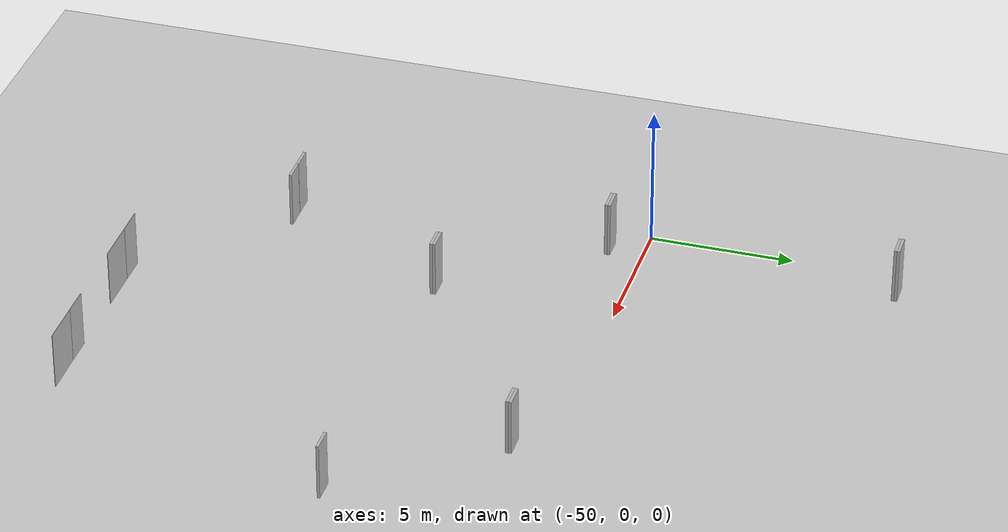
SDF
<sdf version="1.7">
 <world name="default">
  <model name="ground_plane">
   <static>1</static>
   <link name="link">
    <collision name="collision">
     <geometry><plane><normal>0 0 1</normal><size>100 100</size></plane></geometry>
     <surface>
      <contact><collide_bitmask>65535</collide_bitmask></contact>
      <friction><ode><mu>100</mu><mu2>50</mu2></ode></friction>
     </surface>
    </collision>
    <visual name="visual">
     <cast_shadows>0</cast_shadows>
     <geometry><plane><normal>0 0 1</normal><size>100 100</size></plane></geometry>
     <material>
      <script><uri>file://media/materials/scripts/gazebo.material</uri><name>Gazebo/Grey</name></script>
     </material>
    </visual>
   </link>
  </model>
  <model name="door_08x2m">
   <link name="link">
    <visual name="visual">
     <geometry><box><size>0.1 0.8 2</size></box></geometry>
     <material>
      <script>
       <uri>model://door_08x2m/material/script</uri>
       <uri>model://door_08x2m/material/textures</uri>
       <name>Custom/door_08x2m</name>
      </script>
     </material>
    </visual>
   </link>
   <static>1</static>
   <pose>-45 -6.25 1 0 0 -1.5708</pose>
  </model>
  <model name="door_08x2m_clone">
   <link name="link">
    <visual name="visual">
     <geometry><box><size>0.1 0.8 2</size></box></geometry>
     <material>
      <script>
       <uri>model://door_08x2m/material/script</uri>
       <uri>model://door_08x2m/material/textures</uri>
       <name>Custom/door_08x2m</name>
      </script>
     </material>
    </visual>
   </link>
   <static>1</static>
   <pose>-45 -6.15 1 0 0 -1.5708</pose>
  </model>
  <model name="window_curtains">
   <link name="link">
    <visual name="visual">
     <geometry><box><size>0.02 1.5676 2</size></box></geometry>
     <material>
      <script>
       <uri>model://window_curtains/material/script</uri>
       <uri>model://window_curtains/material/textures</uri>
       <name>Custom/window_curtains</name>
      </script>
      <emissive>0 1 0 1</emissive>
     </material>
    </visual>
   </link>
   <static>1</static>
   <pose>-42 -16.1 1.53112 0 0 -1.5708</pose>
  </model>
  <model name="window_curtains_clone">
   <link name="link">
    <visual name="visual">
     <geometry><box><size>0.02 1.5676 2</size></box></geometry>
     <material>
      <script>
       <uri>model://window_curtains/material/script</uri>
       <uri>model://window_curtains/material/textures</uri>
       <name>Custom/window_curtains</name>
      </script>
      <emissive>0 1 0 1</emissive>
     </material>
    </visual>
   </link>
   <static>1</static>
   <pose>-41 -16.1 1.53112 0 0 -1.5708</pose>
  </model>
  <model name="window_curtains_clone_clone">
   <link name="link">
    <visual name="visual">
     <geometry><box><size>0.02 1.5676 2</size></box></geometry>
     <material>
      <script>
       <uri>model://window_curtains/material/script</uri>
       <uri>model://window_curtains/material/textures</uri>
       <name>Custom/window_curtains</name>
      </script>
      <emissive>0 1 0 1</emissive>
     </material>
    </visual>
   </link>
   <static>1</static>
   <pose>-36 -16.1 1.53112 0 0 -1.5708</pose>
  </model>
  <model name="window_curtains_clone_clone_0">
   <link name="link">
    <visual name="visual">
     <geometry><box><size>0.02 1.5676 2</size></box></geometry>
     <material>
      <script>
       <uri>model://window_curtains/material/script</uri>
       <uri>model://window_curtains/material/textures</uri>
       <name>Custom/window_curtains</name>
      </script>
      <emissive>0 1 0 1</emissive>
     </material>
    </visual>
   </link>
   <static>1</static>
   <pose>-37 -16.1 1.53112 0 0 -1.5708</pose>
  </model>
  <model name="door_08x2m_clone_0">
   <link name="link">
    <visual name="visual">
     <geometry><box><size>0.1 0.8 2</size></box></geometry>
     <material>
      <script>
       <uri>model://door_08x2m/material/script</uri>
       <uri>model://door_08x2m/material/textures</uri>
       <name>Custom/door_08x2m</name>
      </script>
     </material>
    </visual>
   </link>
   <static>1</static>
   <pose>-33 -6.25 1 0 0 -1.5708</pose>
  </model>
  <model name="door_08x2m_clone_clone_0">
   <link name="link">
    <visual name="visual">
     <geometry><box><size>0.1 0.8 2</size></box></geometry>
     <material>
      <script>
       <uri>model://door_08x2m/material/script</uri>
       <uri>model://door_08x2m/material/textures</uri>
       <name>Custom/door_08x2m</name>
      </script>
     </material>
    </visual>
   </link>
   <static>1</static>
   <pose>-48.5 -12.15 1 0 0 -1.5708</pose>
  </model>
  <model name="door_08x2m_clone_clone_1">
   <link name="link">
    <visual name="visual">
     <geometry><box><size>0.1 0.8 2</size></box></geometry>
     <material>
      <script>
       <uri>model://door_08x2m/material/script</uri>
       <uri>model://door_08x2m/material/textures</uri>
       <name>Custom/door_08x2m</name>
      </script>
     </material>
    </visual>
   </link>
   <static>1</static>
   <pose>-47.75 -12.15 0.995236 -3.14159 0.001592 -1.56349</pose>
  </model>
  <model name="door_08x2m_clone_1">
   <link name="link">
    <visual name="visual">
     <geometry><box><size>0.1 0.8 2</size></box></geometry>
     <material>
      <script>
       <uri>model://door_08x2m/material/script</uri>
       <uri>model://door_08x2m/material/textures</uri>
       <name>Custom/door_08x2m</name>
      </script>
     </material>
    </visual>
   </link>
   <static>1</static>
   <pose>-49 8.75 1 0 0 -1.5708</pose>
  </model>
  <model name="door_08x2m_clone_clone_2">
   <link name="link">
    <visual name="visual">
     <geometry><box><size>0.1 0.8 2</size></box></geometry>
     <material>
      <script>
       <uri>model://door_08x2m/material/script</uri>
       <uri>model://door_08x2m/material/textures</uri>
       <name>Custom/door_08x2m</name>
      </script>
     </material>
    </visual>
   </link>
   <static>1</static>
   <pose>-49 8.85 1 0 0 -1.5708</pose>
  </model>
  <model name="door_08x2m_clone_1_clone">
   <link name="link">
    <visual name="visual">
     <geometry><box><size>0.1 0.8 2</size></box></geometry>
     <material>
      <script>
       <uri>model://door_08x2m/material/script</uri>
       <uri>model://door_08x2m/material/textures</uri>
       <name>Custom/door_08x2m</name>
      </script>
     </material>
    </visual>
   </link>
   <static>1</static>
   <pose>-49 -1.25 1 0 0 -1.5708</pose>
  </model>
  <model name="door_08x2m_clone_1_clone_0">
   <link name="link">
    <visual name="visual">
     <geometry><box><size>0.1 0.8 2</size></box></geometry>
     <material>
      <script>
       <uri>model://door_08x2m/material/script</uri>
       <uri>model://door_08x2m/material/textures</uri>
       <name>Custom/door_08x2m</name>
      </script>
     </material>
    </visual>
   </link>
   <static>1</static>
   <pose>-49 -1.15 1 0 0 -1.5708</pose>
  </model>
  <model name="door_08x2m_clone_1_clone_clone">
   <link name="link">
    <visual name="visual">
     <geometry><box><size>0.1 0.8 2</size></box></geometry>
     <material>
      <script>
       <uri>model://door_08x2m/material/script</uri>
       <uri>model://door_08x2m/material/textures</uri>
       <name>Custom/door_08x2m</name>
      </script>
     </material>
    </visual>
   </link>
   <static>1</static>
   <pose>-37 -1.25 1 0 0 -1.5708</pose>
  </model>
  <model name="door_08x2m_clone_1_clone_0_clone">
   <link name="link">
    <visual name="visual">
     <geometry><box><size>0.1 0.8 2</size></box></geometry>
     <material>
      <script>
       <uri>model://door_08x2m/material/script</uri>
       <uri>model://door_08x2m/material/textures</uri>
       <name>Custom/door_08x2m</name>
      </script>
     </material>
    </visual>
   </link>
   <static>1</static>
   <pose>-37 -1.15 1 0 0 -1.5708</pose>
  </model>
 </world>
</sdf>
